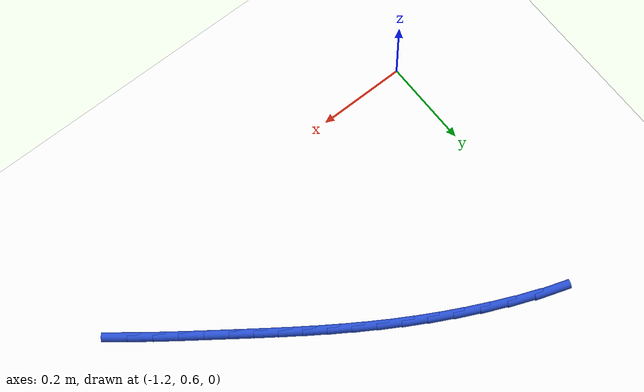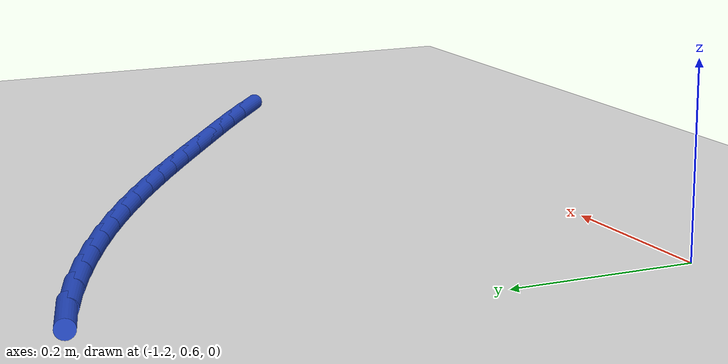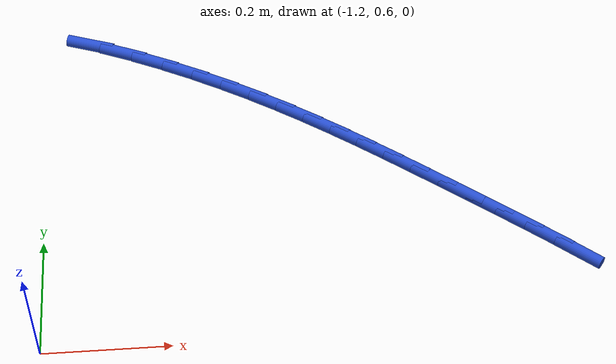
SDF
<sdf version="1.6">
 <world name="default">
  <model name="ground_plane">
   <static>1</static>
   <link name="link">
    <collision name="collision">
     <geometry><plane><normal>0 0 1</normal><size>100 100</size></plane></geometry>
     <surface><friction><ode><mu>100</mu><mu2>50</mu2></ode></friction></surface>
    </collision>
    <visual name="visual">
     <cast_shadows>0</cast_shadows>
     <geometry><plane><normal>0 0 1</normal><size>100 100</size></plane></geometry>
     <material>
      <script><uri>file://media/materials/scripts/gazebo.material</uri><name>Gazebo/WhiteGlow</name></script>
     </material>
    </visual>
   </link>
  </model>
  <model name="line">
   <link name="link_16">
    <pose>-0.36392677441706617 0.7224984681286228 0.01 0 1.57 -0.6636255634197527</pose>
    <collision name="collision">
     <geometry><cylinder><radius>0.01</radius><length>0.08</length></cylinder></geometry>
    </collision>
    <visual name="visual">
     <material>
      <script><name>Gazebo/Blue</name><uri>file://media/materials/scripts/gazebo.material</uri></script>
     </material>
     <geometry><cylinder><radius>0.01</radius><length>0.08</length></cylinder></geometry>
    </visual>
   </link>
   <link name="link_17">
    <pose>-0.4060325567552871 0.7554222724990474 0.01 0 1.57 -0.6468295021096749</pose>
    <collision name="collision">
     <geometry><cylinder><radius>0.01</radius><length>0.08</length></cylinder></geometry>
    </collision>
    <visual name="visual">
     <material>
      <script><name>Gazebo/Blue</name><uri>file://media/materials/scripts/gazebo.material</uri></script>
     </material>
     <geometry><cylinder><radius>0.01</radius><length>0.08</length></cylinder></geometry>
    </visual>
   </link>
   <link name="link_18">
    <pose>-0.4485197900401587 0.7875092109676461 0.01 0 1.57 -0.6364847334885766</pose>
    <collision name="collision">
     <geometry><cylinder><radius>0.01</radius><length>0.08</length></cylinder></geometry>
    </collision>
    <visual name="visual">
     <material>
      <script><name>Gazebo/Blue</name><uri>file://media/materials/scripts/gazebo.material</uri></script>
     </material>
     <geometry><cylinder><radius>0.01</radius><length>0.08</length></cylinder></geometry>
    </visual>
   </link>
   <link name="link_19">
    <pose>-0.4910061675646812 0.8189106429634541 0.01 0 1.57 -0.6325855335935207</pose>
    <collision name="collision">
     <geometry><cylinder><radius>0.01</radius><length>0.08</length></cylinder></geometry>
    </collision>
    <visual name="visual">
     <material>
      <script><name>Gazebo/Blue</name><uri>file://media/materials/scripts/gazebo.material</uri></script>
     </material>
     <geometry><cylinder><radius>0.01</radius><length>0.08</length></cylinder></geometry>
    </visual>
   </link>
   <link name="link_20">
    <pose>-0.5331115301108752 0.8497773365442218 0.01 0 1.57 -0.6318701382126259</pose>
    <collision name="collision">
     <geometry><cylinder><radius>0.01</radius><length>0.08</length></cylinder></geometry>
    </collision>
    <visual name="visual">
     <material>
      <script><name>Gazebo/Blue</name><uri>file://media/materials/scripts/gazebo.material</uri></script>
     </material>
     <geometry><cylinder><radius>0.01</radius><length>0.08</length></cylinder></geometry>
    </visual>
   </link>
   <link name="link_21">
    <pose>-0.5746735964070084 0.8802000609691798 0.01 0 1.57 -0.6280409403933495</pose>
    <collision name="collision">
     <geometry><cylinder><radius>0.01</radius><length>0.08</length></cylinder></geometry>
    </collision>
    <visual name="visual">
     <material>
      <script><name>Gazebo/Blue</name><uri>file://media/materials/scripts/gazebo.material</uri></script>
     </material>
     <geometry><cylinder><radius>0.01</radius><length>0.08</length></cylinder></geometry>
    </visual>
   </link>
   <link name="link_22">
    <pose>-0.6159323556368472 0.9101588090540235 0.01 0 1.57 -0.620353311870208</pose>
    <collision name="collision">
     <geometry><cylinder><radius>0.01</radius><length>0.08</length></cylinder></geometry>
    </collision>
    <visual name="visual">
     <material>
      <script><name>Gazebo/Blue</name><uri>file://media/materials/scripts/gazebo.material</uri></script>
     </material>
     <geometry><cylinder><radius>0.01</radius><length>0.08</length></cylinder></geometry>
    </visual>
   </link>
   <link name="link_23">
    <pose>-0.6571712285526243 0.9396216135149043 0.01 0 1.57 -0.6088348140486063</pose>
    <collision name="collision">
     <geometry><cylinder><radius>0.01</radius><length>0.08</length></cylinder></geometry>
    </collision>
    <visual name="visual">
     <material>
      <script><name>Gazebo/Blue</name><uri>file://media/materials/scripts/gazebo.material</uri></script>
     </material>
     <geometry><cylinder><radius>0.01</radius><length>0.08</length></cylinder></geometry>
    </visual>
   </link>
   <link name="link_24">
    <pose>-0.698673635906571 0.9685565070679718 0.01 0 1.57 -0.5936139801577363</pose>
    <collision name="collision">
     <geometry><cylinder><radius>0.01</radius><length>0.08</length></cylinder></geometry>
    </collision>
    <visual name="visual">
     <material>
      <script><name>Gazebo/Blue</name><uri>file://media/materials/scripts/gazebo.material</uri></script>
     </material>
     <geometry><cylinder><radius>0.01</radius><length>0.08</length></cylinder></geometry>
    </visual>
   </link>
   <link name="link_25">
    <pose>-0.7407229984509203 0.9969315224293777 0.01 0 1.57 -0.574920317152491</pose>
    <collision name="collision">
     <geometry><cylinder><radius>0.01</radius><length>0.08</length></cylinder></geometry>
    </collision>
    <visual name="visual">
     <material>
      <script><name>Gazebo/Blue</name><uri>file://media/materials/scripts/gazebo.material</uri></script>
     </material>
     <geometry><cylinder><radius>0.01</radius><length>0.08</length></cylinder></geometry>
    </visual>
   </link>
   <link name="link_26">
    <pose>-0.783602736937904 1.0247146923152721 0.01 0 1.57 -0.5530784157603751</pose>
    <collision name="collision">
     <geometry><cylinder><radius>0.01</radius><length>0.08</length></cylinder></geometry>
    </collision>
    <visual name="visual">
     <material>
      <script><name>Gazebo/Blue</name><uri>file://media/materials/scripts/gazebo.material</uri></script>
     </material>
     <geometry><cylinder><radius>0.01</radius><length>0.08</length></cylinder></geometry>
    </visual>
   </link>
   <link name="link_27">
    <pose>-0.8275962721197543 1.0518740494418062 0.01 0 1.57 -0.5284957722424849</pose>
    <collision name="collision">
     <geometry><cylinder><radius>0.01</radius><length>0.08</length></cylinder></geometry>
    </collision>
    <visual name="visual">
     <material>
      <script><name>Gazebo/Blue</name><uri>file://media/materials/scripts/gazebo.material</uri></script>
     </material>
     <geometry><cylinder><radius>0.01</radius><length>0.08</length></cylinder></geometry>
    </visual>
   </link>
   <link name="link_28">
    <pose>-0.8729870247487037 1.0783776265251301 0.01 0 1.57 -0.5016446627373364</pose>
    <collision name="collision">
     <geometry><cylinder><radius>0.01</radius><length>0.08</length></cylinder></geometry>
    </collision>
    <visual name="visual">
     <material>
      <script><name>Gazebo/Blue</name><uri>file://media/materials/scripts/gazebo.material</uri></script>
     </material>
     <geometry><cylinder><radius>0.01</radius><length>0.08</length></cylinder></geometry>
    </visual>
   </link>
   <link name="link_29">
    <pose>-0.9200584155769845 1.1041934562813955 0.01 0 1.57 -0.47303929964627917</pose>
    <collision name="collision">
     <geometry><cylinder><radius>0.01</radius><length>0.08</length></cylinder></geometry>
    </collision>
    <visual name="visual">
     <material>
      <script><name>Gazebo/Blue</name><uri>file://media/materials/scripts/gazebo.material</uri></script>
     </material>
     <geometry><cylinder><radius>0.01</radius><length>0.08</length></cylinder></geometry>
    </visual>
   </link>
   <link name="link_30">
    <pose>-0.9690938653568283 1.129289571426752 0.01 0 1.57 -0.4432103240331943</pose>
    <collision name="collision">
     <geometry><cylinder><radius>0.01</radius><length>0.08</length></cylinder></geometry>
    </collision>
    <visual name="visual">
     <material>
      <script><name>Gazebo/Blue</name><uri>file://media/materials/scripts/gazebo.material</uri></script>
     </material>
     <geometry><cylinder><radius>0.01</radius><length>0.08</length></cylinder></geometry>
    </visual>
   </link>
   <link name="link_31">
    <pose>-1.0203767948404678 1.1536340046773508 0.01 0 1.57 -0.412032980412588</pose>
    <collision name="collision">
     <geometry><cylinder><radius>0.01</radius><length>0.08</length></cylinder></geometry>
    </collision>
    <visual name="visual">
     <material>
      <script><name>Gazebo/Blue</name><uri>file://media/materials/scripts/gazebo.material</uri></script>
     </material>
     <geometry><cylinder><radius>0.01</radius><length>0.08</length></cylinder></geometry>
    </visual>
   </link>
   <link name="link_32">
    <pose>-1.0741012057852966 1.1771142780695896 0.01 0 1.57 -0.3732032501812656</pose>
    <collision name="collision">
     <geometry><cylinder><radius>0.01</radius><length>0.08</length></cylinder></geometry>
    </collision>
    <visual name="visual">
     <material>
      <script><name>Gazebo/Blue</name><uri>file://media/materials/scripts/gazebo.material</uri></script>
     </material>
     <geometry><cylinder><radius>0.01</radius><length>0.08</length></cylinder></geometry>
    </visual>
   </link>
   <link name="link_33">
    <pose>-1.1296047001592389 1.1988468321787638 0.01 0 1.57 -0.321072868674369</pose>
    <collision name="collision">
     <geometry><cylinder><radius>0.01</radius><length>0.08</length></cylinder></geometry>
    </collision>
    <visual name="visual">
     <material>
      <script><name>Gazebo/Blue</name><uri>file://media/materials/scripts/gazebo.material</uri></script>
     </material>
     <geometry><cylinder><radius>0.01</radius><length>0.08</length></cylinder></geometry>
    </visual>
   </link>
  </model>
 </world>
</sdf>
